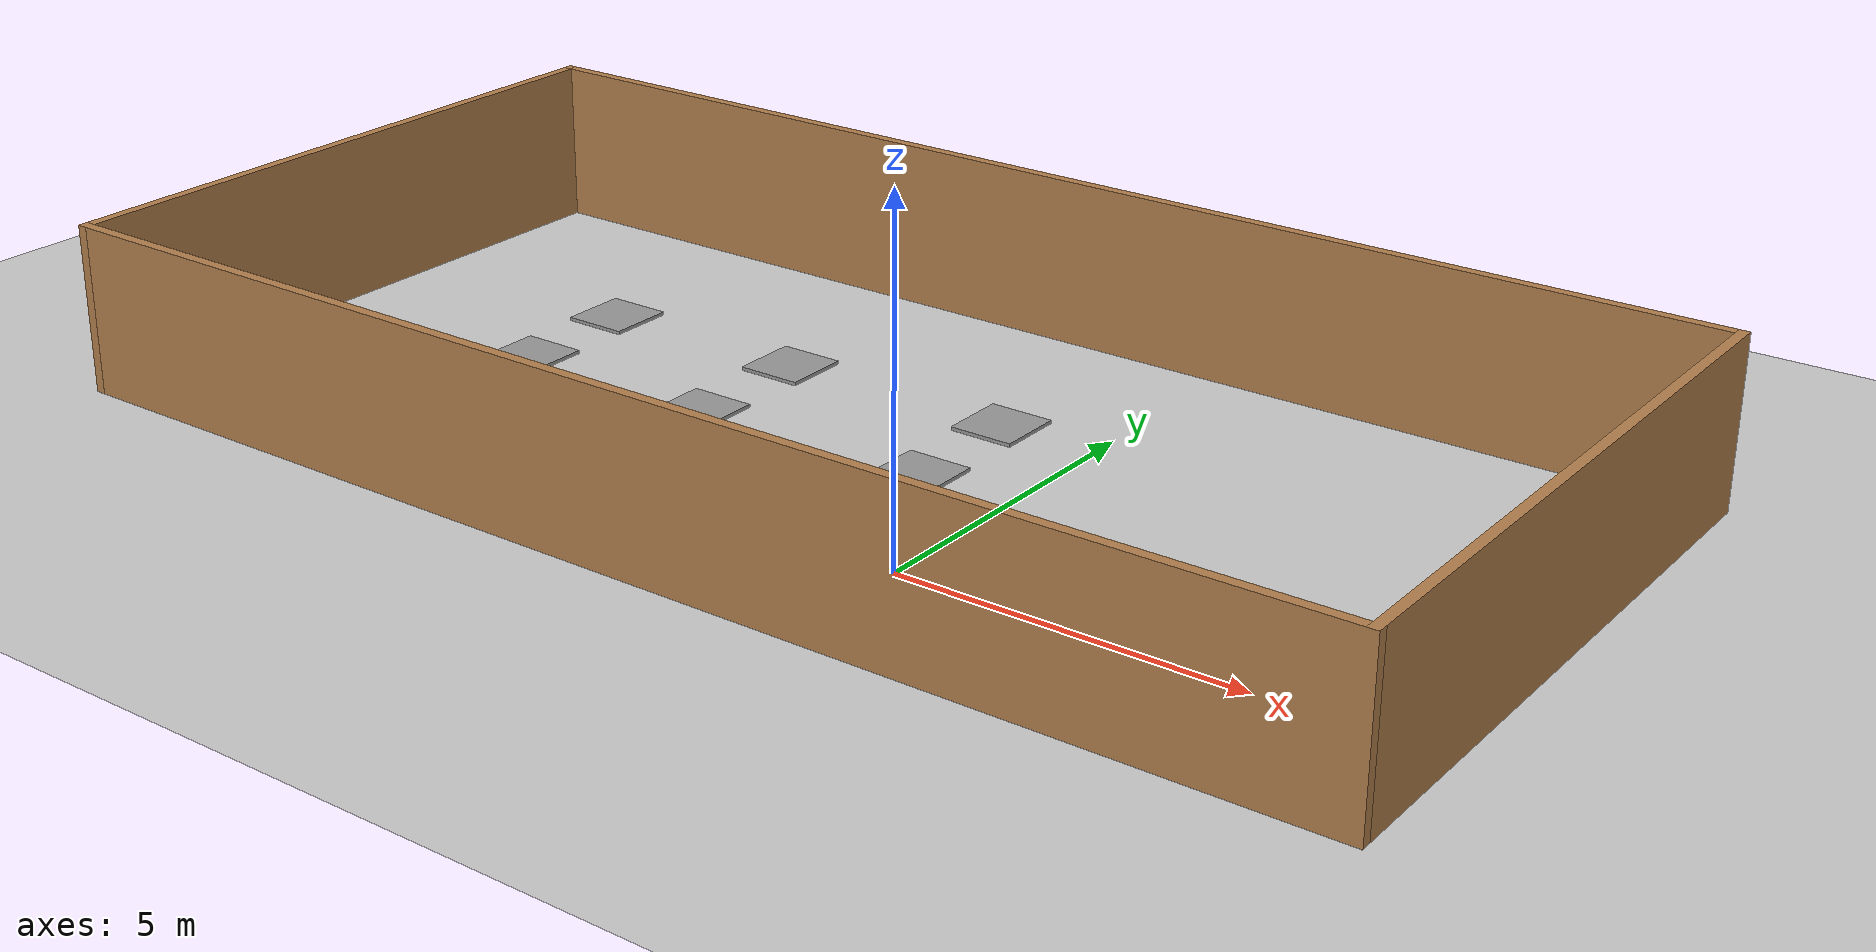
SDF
<sdf version="1.7">
 <world name="default">
  <light name="sun" type="directional">
   <pose>0 0 10 0 -0 0</pose>
   <diffuse>0.8 0.8 0.8 1</diffuse>
   <specular>0.2 0.2 0.2 1</specular>
   <attenuation>
    <range>1000</range>
    <constant>0.9</constant>
    <linear>0.01</linear>
    <quadratic>0.001</quadratic>
   </attenuation>
   <direction>-0.5 0.1 -0.9</direction>
   <spot><inner_angle>0</inner_angle><outer_angle>0</outer_angle><falloff>0</falloff></spot>
  </light>
  <model name="ground_plane">
   <static>1</static>
   <link name="link">
    <collision name="collision">
     <geometry><plane><normal>0 0 1</normal><size>100 100</size></plane></geometry>
     <surface><friction><ode><mu>100</mu><mu2>50</mu2></ode></friction></surface>
    </collision>
    <visual name="visual">
     <cast_shadows>0</cast_shadows>
     <geometry><plane><normal>0 0 1</normal><size>100 100</size></plane></geometry>
     <material>
      <script><uri>file://media/materials/scripts/gazebo.material</uri><name>Gazebo/Grey</name></script>
     </material>
    </visual>
   </link>
  </model>
  <gravity>0 0 -9.8</gravity>
  <magnetic_field>6e-06 2.3e-05 -4.2e-05</magnetic_field>
  <atmosphere type="adiabatic"/>
  <physics type="ode">
   <max_step_size>0.001</max_step_size>
   <real_time_factor>1</real_time_factor>
   <real_time_update_rate>1000</real_time_update_rate>
  </physics>
  <scene><ambient>0.4 0.4 0.4 1</ambient><background>0.7 0.7 0.7 1</background><shadows>1</shadows></scene>
  <audio><device>default</device></audio>
  <spherical_coordinates>
   <surface_model>EARTH_WGS84</surface_model>
   <latitude_deg>0</latitude_deg>
   <longitude_deg>0</longitude_deg>
   <elevation>0</elevation>
   <heading_deg>0</heading_deg>
  </spherical_coordinates>
  <model name="demo_project">
   <pose>-2.48264 2.8447 0 0 -0 0</pose>
   <link name="Wall_5">
    <collision name="Wall_5_Collision">
     <geometry><box><size>20 0.15 2.5</size></box></geometry>
     <pose>0 0 1.25 0 -0 0</pose>
    </collision>
    <visual name="Wall_5_Visual">
     <pose>0 0 1.25 0 -0 0</pose>
     <geometry><box><size>20 0.15 2.5</size></box></geometry>
     <material>
      <script><uri>file://media/materials/scripts/gazebo.material</uri><name>Gazebo/Wood</name></script>
      <ambient>1 1 1 1</ambient>
     </material>
     <meta><layer>0</layer></meta>
    </visual>
    <pose>0 4.925 0 0 -0 0</pose>
   </link>
   <link name="Wall_6">
    <collision name="Wall_6_Collision">
     <geometry><box><size>10 0.15 2.5</size></box></geometry>
     <pose>0 0 1.25 0 -0 0</pose>
    </collision>
    <visual name="Wall_6_Visual">
     <pose>0 0 1.25 0 -0 0</pose>
     <geometry><box><size>10 0.15 2.5</size></box></geometry>
     <material>
      <script><uri>file://media/materials/scripts/gazebo.material</uri><name>Gazebo/Wood</name></script>
      <ambient>1 1 1 1</ambient>
     </material>
     <meta><layer>0</layer></meta>
    </visual>
    <pose>9.925 -0 0 0 -0 -1.5708</pose>
   </link>
   <link name="Wall_7">
    <collision name="Wall_7_Collision">
     <geometry><box><size>20 0.15 2.5</size></box></geometry>
     <pose>0 0 1.25 0 -0 0</pose>
    </collision>
    <visual name="Wall_7_Visual">
     <pose>0 0 1.25 0 -0 0</pose>
     <geometry><box><size>20 0.15 2.5</size></box></geometry>
     <material>
      <script><uri>file://media/materials/scripts/gazebo.material</uri><name>Gazebo/Wood</name></script>
      <ambient>1 1 1 1</ambient>
     </material>
     <meta><layer>0</layer></meta>
    </visual>
    <pose>0 -4.925 0 0 -0 3.14159</pose>
   </link>
   <link name="Wall_8">
    <collision name="Wall_8_Collision">
     <geometry><box><size>10 0.15 2.5</size></box></geometry>
     <pose>0 0 1.25 0 -0 0</pose>
    </collision>
    <visual name="Wall_8_Visual">
     <pose>0 0 1.25 0 -0 0</pose>
     <geometry><box><size>10 0.15 2.5</size></box></geometry>
     <material>
      <script><uri>file://media/materials/scripts/gazebo.material</uri><name>Gazebo/Wood</name></script>
      <ambient>1 1 1 1</ambient>
     </material>
     <meta><layer>0</layer></meta>
    </visual>
    <pose>-9.925 -0 0 0 -0 1.5708</pose>
   </link>
   <static>1</static>
  </model>
  <model name="unit_box_clone_0">
   <pose>-1.44782 0.499807 0.026148 0 -0 0</pose>
   <link name="link">
    <inertial>
     <mass>1</mass>
     <inertia>
      <ixx>0.166667</ixx>
      <ixy>0</ixy>
      <ixz>0</ixz>
      <iyy>0.166667</iyy>
      <iyz>0</iyz>
      <izz>0.166667</izz>
     </inertia>
    </inertial>
    <collision name="collision">
     <geometry><box><size>0.977354 1.01803 0.0522959</size></box></geometry>
    </collision>
    <visual name="visual">
     <geometry><box><size>0.977354 1.01803 0.0522959</size></box></geometry>
     <material>
      <script><name>Gazebo/Grey</name><uri>file://media/materials/scripts/gazebo.material</uri></script>
     </material>
    </visual>
   </link>
  </model>
  <model name="unit_box_clone_0_clone">
   <pose>-1.48914 2.54097 0.026148 0 -0 0</pose>
   <link name="link">
    <inertial>
     <mass>1</mass>
     <inertia>
      <ixx>0.166667</ixx>
      <ixy>0</ixy>
      <ixz>0</ixz>
      <iyy>0.166667</iyy>
      <iyz>0</iyz>
      <izz>0.166667</izz>
     </inertia>
    </inertial>
    <collision name="collision"><geometry><box><size>0.977354 1.01803 0.052296</size></box></geometry></collision>
    <visual name="visual">
     <geometry><box><size>0.977354 1.01803 0.052296</size></box></geometry>
     <material>
      <script><name>Gazebo/Grey</name><uri>file://media/materials/scripts/gazebo.material</uri></script>
     </material>
    </visual>
   </link>
  </model>
  <model name="unit_box_clone_0_clone_0">
   <pose>-5.1418 0.403372 0.026148 0 -0 0</pose>
   <link name="link">
    <inertial>
     <mass>1</mass>
     <inertia>
      <ixx>0.166667</ixx>
      <ixy>0</ixy>
      <ixz>0</ixz>
      <iyy>0.166667</iyy>
      <iyz>0</iyz>
      <izz>0.166667</izz>
     </inertia>
    </inertial>
    <collision name="collision"><geometry><box><size>0.977354 1.01803 0.052296</size></box></geometry></collision>
    <visual name="visual">
     <geometry><box><size>0.977354 1.01803 0.052296</size></box></geometry>
     <material>
      <script><name>Gazebo/Grey</name><uri>file://media/materials/scripts/gazebo.material</uri></script>
     </material>
    </visual>
   </link>
  </model>
  <model name="unit_box_clone_0_clone_1">
   <pose>-5.19036 2.44834 0.026148 0 -0 0.001311</pose>
   <link name="link">
    <inertial>
     <mass>1</mass>
     <inertia>
      <ixx>0.166667</ixx>
      <ixy>0</ixy>
      <ixz>0</ixz>
      <iyy>0.166667</iyy>
      <iyz>0</iyz>
      <izz>0.166667</izz>
     </inertia>
    </inertial>
    <collision name="collision"><geometry><box><size>0.977354 1.01803 0.052296</size></box></geometry></collision>
    <visual name="visual">
     <geometry><box><size>0.977354 1.01803 0.052296</size></box></geometry>
     <material>
      <script><name>Gazebo/Grey</name><uri>file://media/materials/scripts/gazebo.material</uri></script>
     </material>
    </visual>
   </link>
  </model>
  <model name="unit_box_clone_0_clone_2">
   <pose>-8.49996 0.387588 0.026148 -0 -0 -0.000793</pose>
   <link name="link">
    <inertial>
     <mass>1</mass>
     <inertia>
      <ixx>0.166667</ixx>
      <ixy>0</ixy>
      <ixz>0</ixz>
      <iyy>0.166667</iyy>
      <iyz>0</iyz>
      <izz>0.166667</izz>
     </inertia>
    </inertial>
    <collision name="collision"><geometry><box><size>0.977354 1.01803 0.052296</size></box></geometry></collision>
    <visual name="visual">
     <geometry><box><size>0.977354 1.01803 0.052296</size></box></geometry>
     <material>
      <script><name>Gazebo/Grey</name><uri>file://media/materials/scripts/gazebo.material</uri></script>
     </material>
    </visual>
   </link>
  </model>
  <model name="unit_box_clone_0_clone_3">
   <pose>-8.47775 2.51166 0.026148 0 -0 0</pose>
   <link name="link">
    <inertial>
     <mass>1</mass>
     <inertia>
      <ixx>0.166667</ixx>
      <ixy>0</ixy>
      <ixz>0</ixz>
      <iyy>0.166667</iyy>
      <iyz>0</iyz>
      <izz>0.166667</izz>
     </inertia>
    </inertial>
    <collision name="collision"><geometry><box><size>0.977354 1.01803 0.052296</size></box></geometry></collision>
    <visual name="visual">
     <geometry><box><size>0.977354 1.01803 0.052296</size></box></geometry>
     <material>
      <script><name>Gazebo/Grey</name><uri>file://media/materials/scripts/gazebo.material</uri></script>
     </material>
    </visual>
   </link>
  </model>
  <model name="unit_box_clone_0_clone_4">
   <pose>-8.51804 4.44482 0.026148 0 -0 0</pose>
   <link name="link">
    <inertial>
     <mass>1</mass>
     <inertia>
      <ixx>0.166667</ixx>
      <ixy>0</ixy>
      <ixz>0</ixz>
      <iyy>0.166667</iyy>
      <iyz>0</iyz>
      <izz>0.166667</izz>
     </inertia>
    </inertial>
    <collision name="collision"><geometry><box><size>0.977354 1.01803 0.052296</size></box></geometry></collision>
    <visual name="visual">
     <geometry><box><size>0.977354 1.01803 0.052296</size></box></geometry>
     <material>
      <script><name>Gazebo/Grey</name><uri>file://media/materials/scripts/gazebo.material</uri></script>
     </material>
    </visual>
   </link>
  </model>
  <model name="unit_box_clone_0_clone_5">
   <pose>-5.18413 4.47329 0.026148 0 -0 0</pose>
   <link name="link">
    <inertial>
     <mass>1</mass>
     <inertia>
      <ixx>0.166667</ixx>
      <ixy>0</ixy>
      <ixz>0</ixz>
      <iyy>0.166667</iyy>
      <iyz>0</iyz>
      <izz>0.166667</izz>
     </inertia>
    </inertial>
    <collision name="collision"><geometry><box><size>0.977354 1.01803 0.052296</size></box></geometry></collision>
    <visual name="visual">
     <geometry><box><size>0.977354 1.01803 0.052296</size></box></geometry>
     <material>
      <script><name>Gazebo/Grey</name><uri>file://media/materials/scripts/gazebo.material</uri></script>
     </material>
    </visual>
   </link>
  </model>
  <model name="unit_box_clone_0_clone_6">
   <pose>-1.50956 4.52151 0.026148 0 -0 0</pose>
   <link name="link">
    <inertial>
     <mass>1</mass>
     <inertia>
      <ixx>0.166667</ixx>
      <ixy>0</ixy>
      <ixz>0</ixz>
      <iyy>0.166667</iyy>
      <iyz>0</iyz>
      <izz>0.166667</izz>
     </inertia>
    </inertial>
    <collision name="collision"><geometry><box><size>0.977354 1.01803 0.052296</size></box></geometry></collision>
    <visual name="visual">
     <geometry><box><size>0.977354 1.01803 0.052296</size></box></geometry>
     <material>
      <script><name>Gazebo/Grey</name><uri>file://media/materials/scripts/gazebo.material</uri></script>
     </material>
    </visual>
   </link>
  </model>
 </world>
</sdf>
